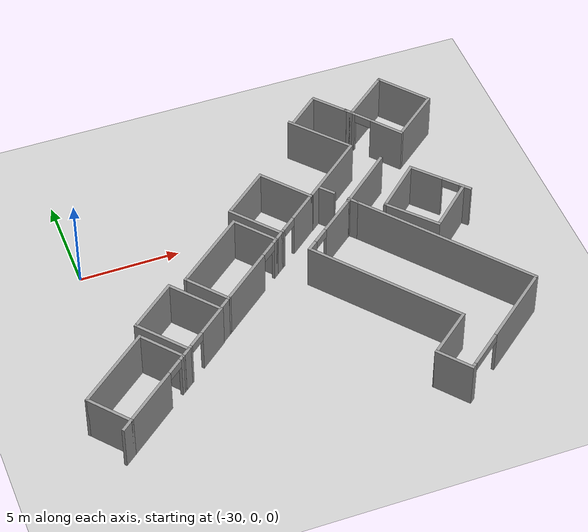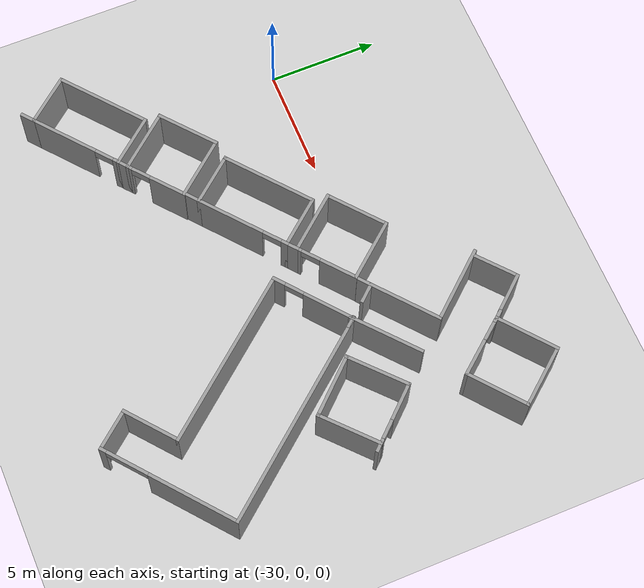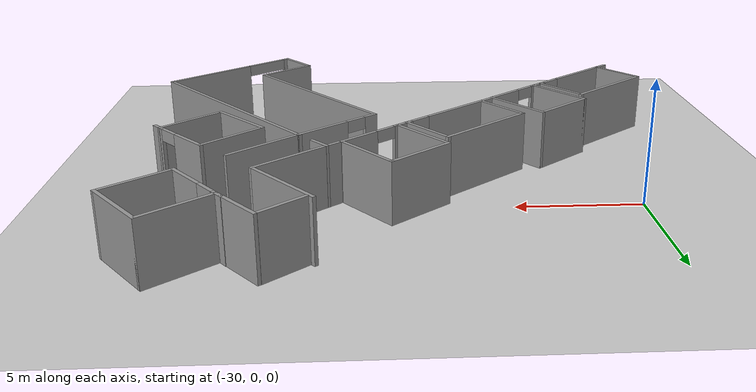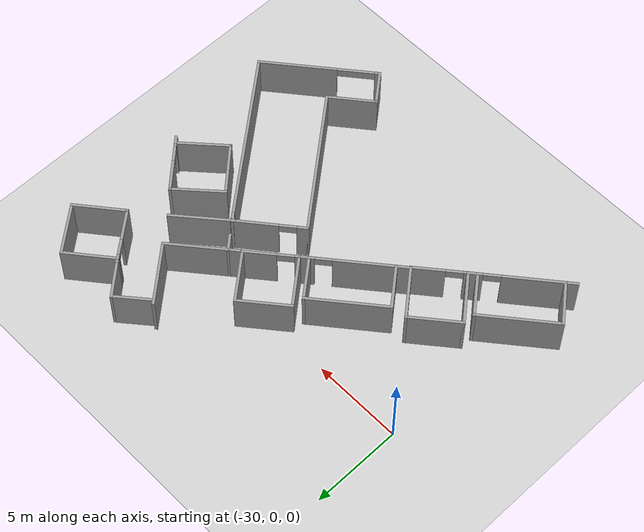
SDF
<sdf version="1.6">
 <world name="default">
  <model name="ground_plane">
   <static>1</static>
   <link name="link">
    <collision name="collision">
     <geometry><plane><normal>0 0 1</normal><size>100 100</size></plane></geometry>
     <surface>
      <contact><collide_bitmask>65535</collide_bitmask></contact>
      <friction><ode><mu>100</mu><mu2>50</mu2></ode></friction>
     </surface>
    </collision>
    <visual name="visual">
     <cast_shadows>0</cast_shadows>
     <geometry><plane><normal>0 0 1</normal><size>100 100</size></plane></geometry>
     <material>
      <script><uri>file://media/materials/scripts/gazebo.material</uri><name>Gazebo/Grey</name></script>
     </material>
    </visual>
   </link>
  </model>
  <model name="near_tuna_room_clone_clone">
   <pose>-12.5383 3.82224 0 0 0 -0.889073</pose>
   <link name="Wall_20">
    <collision name="Wall_20_Collision">
     <geometry><box><size>0.5 0.15 2.5</size></box></geometry>
     <pose>0 0 1.25 0 -0 0</pose>
    </collision>
    <visual name="Wall_20_Visual">
     <pose>0 0 1.25 0 -0 0</pose>
     <geometry><box><size>0.5 0.15 2.5</size></box></geometry>
     <material>
      <script><uri>file://media/materials/scripts/gazebo.material</uri><name>Gazebo/Grey</name></script>
      <ambient>1 1 1 1</ambient>
     </material>
     <meta><layer>0</layer></meta>
    </visual>
    <pose>-1.425 -1.425 0 0 -0 0</pose>
   </link>
   <link name="Wall_21">
    <collision name="Wall_21_Collision">
     <geometry><box><size>3 0.15 2.5</size></box></geometry>
     <pose>0 0 1.25 0 -0 0</pose>
    </collision>
    <visual name="Wall_21_Visual">
     <pose>0 0 1.25 0 -0 0</pose>
     <geometry><box><size>3 0.15 2.5</size></box></geometry>
     <material>
      <script><uri>file://media/materials/scripts/gazebo.material</uri><name>Gazebo/Grey</name></script>
      <ambient>1 1 1 1</ambient>
     </material>
     <meta><layer>0</layer></meta>
    </visual>
    <pose>-1.25 -0 0 0 -0 1.5708</pose>
   </link>
   <link name="Wall_22">
    <collision name="Wall_22_Collision">
     <geometry><box><size>3 0.15 2.5</size></box></geometry>
     <pose>0 0 1.25 0 -0 0</pose>
    </collision>
    <visual name="Wall_22_Visual">
     <pose>0 0 1.25 0 -0 0</pose>
     <geometry><box><size>3 0.15 2.5</size></box></geometry>
     <material>
      <script><uri>file://media/materials/scripts/gazebo.material</uri><name>Gazebo/Grey</name></script>
      <ambient>1 1 1 1</ambient>
     </material>
     <meta><layer>0</layer></meta>
    </visual>
    <pose>0.175 1.425 0 0 -0 0</pose>
   </link>
   <link name="Wall_23">
    <collision name="Wall_23_Collision">
     <geometry><box><size>3 0.15 2.5</size></box></geometry>
     <pose>0 0 1.25 0 -0 0</pose>
    </collision>
    <visual name="Wall_23_Visual">
     <pose>0 0 1.25 0 -0 0</pose>
     <geometry><box><size>3 0.15 2.5</size></box></geometry>
     <material>
      <script><uri>file://media/materials/scripts/gazebo.material</uri><name>Gazebo/Grey</name></script>
      <ambient>1 1 1 1</ambient>
     </material>
     <meta><layer>0</layer></meta>
    </visual>
    <pose>1.6 -0 0 0 -0 -1.5708</pose>
   </link>
   <link name="Wall_24">
    <pose>0.175 -1.425 0 0 -0 3.14159</pose>
    <visual name="Wall_24_Visual_0">
     <pose>-0.5975 0 1.25 0 -0 0</pose>
     <geometry><box><size>1.805 0.15 2.5</size></box></geometry>
     <material>
      <script><uri>file://media/materials/scripts/gazebo.material</uri><name>Gazebo/Grey</name></script>
      <ambient>1 1 1 1</ambient>
     </material>
     <meta><layer>0</layer></meta>
    </visual>
    <collision name="Wall_24_Collision_0">
     <geometry><box><size>1.805 0.15 2.5</size></box></geometry>
     <pose>-0.5975 0 1.25 0 -0 0</pose>
    </collision>
    <visual name="Wall_24_Visual_1">
     <pose>1.3525 0 1.25 0 -0 0</pose>
     <geometry><box><size>0.295 0.15 2.5</size></box></geometry>
     <material>
      <script><uri>file://media/materials/scripts/gazebo.material</uri><name>Gazebo/Grey</name></script>
      <ambient>1 1 1 1</ambient>
     </material>
     <meta><layer>0</layer></meta>
    </visual>
    <collision name="Wall_24_Collision_1">
     <geometry><box><size>0.295 0.15 2.5</size></box></geometry>
     <pose>1.3525 0 1.25 0 -0 0</pose>
    </collision>
    <visual name="Wall_24_Visual_2">
     <pose>0.755 0 2.25 0 -0 0</pose>
     <geometry><box><size>0.9 0.15 0.5</size></box></geometry>
     <material>
      <script><uri>file://media/materials/scripts/gazebo.material</uri><name>Gazebo/Grey</name></script>
      <ambient>1 1 1 1</ambient>
     </material>
     <meta><layer>0</layer></meta>
    </visual>
    <collision name="Wall_24_Collision_2">
     <geometry><box><size>0.9 0.15 0.5</size></box></geometry>
     <pose>0.755 0 2.25 0 -0 0</pose>
    </collision>
   </link>
   <static>1</static>
  </model>
  <model name="near_tuna_room_clone_clone_0">
   <pose>-13.1154 -2.886 0 0 -0 2.31173</pose>
   <link name="Wall_20">
    <collision name="Wall_20_Collision">
     <geometry><box><size>0.5 0.15 2.5</size></box></geometry>
     <pose>0 0 1.25 0 -0 0</pose>
    </collision>
    <visual name="Wall_20_Visual">
     <pose>0 0 1.25 0 -0 0</pose>
     <geometry><box><size>0.5 0.15 2.5</size></box></geometry>
     <material>
      <script><uri>file://media/materials/scripts/gazebo.material</uri><name>Gazebo/Grey</name></script>
      <ambient>1 1 1 1</ambient>
     </material>
     <meta><layer>0</layer></meta>
    </visual>
    <pose>-1.425 -1.425 0 0 -0 0</pose>
   </link>
   <link name="Wall_21">
    <collision name="Wall_21_Collision">
     <geometry><box><size>3 0.15 2.5</size></box></geometry>
     <pose>0 0 1.25 0 -0 0</pose>
    </collision>
    <visual name="Wall_21_Visual">
     <pose>0 0 1.25 0 -0 0</pose>
     <geometry><box><size>3 0.15 2.5</size></box></geometry>
     <material>
      <script><uri>file://media/materials/scripts/gazebo.material</uri><name>Gazebo/Grey</name></script>
      <ambient>1 1 1 1</ambient>
     </material>
     <meta><layer>0</layer></meta>
    </visual>
    <pose>-1.25 -0 0 0 -0 1.5708</pose>
   </link>
   <link name="Wall_22">
    <collision name="Wall_22_Collision">
     <geometry><box><size>3 0.15 2.5</size></box></geometry>
     <pose>0 0 1.25 0 -0 0</pose>
    </collision>
    <visual name="Wall_22_Visual">
     <pose>0 0 1.25 0 -0 0</pose>
     <geometry><box><size>3 0.15 2.5</size></box></geometry>
     <material>
      <script><uri>file://media/materials/scripts/gazebo.material</uri><name>Gazebo/Grey</name></script>
      <ambient>1 1 1 1</ambient>
     </material>
     <meta><layer>0</layer></meta>
    </visual>
    <pose>0.175 1.425 0 0 -0 0</pose>
   </link>
   <link name="Wall_23">
    <collision name="Wall_23_Collision">
     <geometry><box><size>3 0.15 2.5</size></box></geometry>
     <pose>0 0 1.25 0 -0 0</pose>
    </collision>
    <visual name="Wall_23_Visual">
     <pose>0 0 1.25 0 -0 0</pose>
     <geometry><box><size>3 0.15 2.5</size></box></geometry>
     <material>
      <script><uri>file://media/materials/scripts/gazebo.material</uri><name>Gazebo/Grey</name></script>
      <ambient>1 1 1 1</ambient>
     </material>
     <meta><layer>0</layer></meta>
    </visual>
    <pose>1.6 -0 0 0 -0 -1.5708</pose>
   </link>
   <link name="Wall_24">
    <pose>0.175 -1.425 0 0 -0 3.14159</pose>
    <visual name="Wall_24_Visual_0">
     <pose>-0.5975 0 1.25 0 -0 0</pose>
     <geometry><box><size>1.805 0.15 2.5</size></box></geometry>
     <material>
      <script><uri>file://media/materials/scripts/gazebo.material</uri><name>Gazebo/Grey</name></script>
      <ambient>1 1 1 1</ambient>
     </material>
     <meta><layer>0</layer></meta>
    </visual>
    <collision name="Wall_24_Collision_0">
     <geometry><box><size>1.805 0.15 2.5</size></box></geometry>
     <pose>-0.5975 0 1.25 0 -0 0</pose>
    </collision>
    <visual name="Wall_24_Visual_1">
     <pose>1.3525 0 1.25 0 -0 0</pose>
     <geometry><box><size>0.295 0.15 2.5</size></box></geometry>
     <material>
      <script><uri>file://media/materials/scripts/gazebo.material</uri><name>Gazebo/Grey</name></script>
      <ambient>1 1 1 1</ambient>
     </material>
     <meta><layer>0</layer></meta>
    </visual>
    <collision name="Wall_24_Collision_1">
     <geometry><box><size>0.295 0.15 2.5</size></box></geometry>
     <pose>1.3525 0 1.25 0 -0 0</pose>
    </collision>
    <visual name="Wall_24_Visual_2">
     <pose>0.755 0 2.25 0 -0 0</pose>
     <geometry><box><size>0.9 0.15 0.5</size></box></geometry>
     <material>
      <script><uri>file://media/materials/scripts/gazebo.material</uri><name>Gazebo/Grey</name></script>
      <ambient>1 1 1 1</ambient>
     </material>
     <meta><layer>0</layer></meta>
    </visual>
    <collision name="Wall_24_Collision_2">
     <geometry><box><size>0.9 0.15 0.5</size></box></geometry>
     <pose>0.755 0 2.25 0 -0 0</pose>
    </collision>
   </link>
   <static>1</static>
  </model>
  <model name="1814">
   <pose>-16.0654 -7.65729 0 0 -0 0.68239</pose>
   <link name="Wall_84">
    <collision name="Wall_84_Collision">
     <geometry><box><size>2 0.15 2.5</size></box></geometry>
     <pose>0 0 1.25 0 -0 0</pose>
    </collision>
    <visual name="Wall_84_Visual">
     <pose>0 0 1.25 0 -0 0</pose>
     <geometry><box><size>2 0.15 2.5</size></box></geometry>
     <material>
      <script><uri>file://media/materials/scripts/gazebo.material</uri><name>Gazebo/Grey</name></script>
      <ambient>1 1 1 1</ambient>
     </material>
     <meta><layer>0</layer></meta>
    </visual>
    <pose>-3.22488 -4.105 0 0 -0 1.57067</pose>
   </link>
   <link name="Wall_85">
    <collision name="Wall_85_Collision">
     <geometry><box><size>2.75 0.15 2.5</size></box></geometry>
     <pose>0 0 1.25 0 -0 0</pose>
    </collision>
    <visual name="Wall_85_Visual">
     <pose>0 0 1.25 0 -0 0</pose>
     <geometry><box><size>2.75 0.15 2.5</size></box></geometry>
     <material>
      <script><uri>file://media/materials/scripts/gazebo.material</uri><name>Gazebo/Grey</name></script>
      <ambient>1 1 1 1</ambient>
     </material>
     <meta><layer>0</layer></meta>
    </visual>
    <pose>-1.92476 -3.17998 0 0 -0 0</pose>
   </link>
   <link name="Wall_86">
    <collision name="Wall_86_Collision">
     <geometry><box><size>8.36 0.15 2.5</size></box></geometry>
     <pose>0 0 1.25 0 -0 0</pose>
    </collision>
    <visual name="Wall_86_Visual">
     <pose>0 0 1.25 0 -0 0</pose>
     <geometry><box><size>8.36 0.15 2.5</size></box></geometry>
     <material>
      <script><uri>file://media/materials/scripts/gazebo.material</uri><name>Gazebo/Grey</name></script>
      <ambient>1 1 1 1</ambient>
     </material>
     <meta><layer>0</layer></meta>
    </visual>
    <pose>-0.624761 0.925021 0 0 -0 1.5708</pose>
   </link>
   <link name="Wall_87">
    <pose>1.30012 5.03 0 0 -0 -1.1e-05</pose>
    <visual name="Wall_87_Visual_0">
     <pose>-1.68316 0 1.25 0 -0 0</pose>
     <geometry><box><size>0.633447 0.15 2.5</size></box></geometry>
     <material>
      <script><uri>file://media/materials/scripts/gazebo.material</uri><name>Gazebo/Grey</name></script>
      <ambient>1 1 1 1</ambient>
     </material>
     <meta><layer>0</layer></meta>
    </visual>
    <collision name="Wall_87_Collision_0">
     <geometry><box><size>0.633447 0.15 2.5</size></box></geometry>
     <pose>-1.68316 0 1.25 0 -0 0</pose>
    </collision>
    <visual name="Wall_87_Visual_1">
     <pose>0.766723 0 1.25 0 -0 0</pose>
     <geometry><box><size>2.46632 0.15 2.5</size></box></geometry>
     <material>
      <script><uri>file://media/materials/scripts/gazebo.material</uri><name>Gazebo/Grey</name></script>
      <ambient>1 1 1 1</ambient>
     </material>
     <meta><layer>0</layer></meta>
    </visual>
    <collision name="Wall_87_Collision_1">
     <geometry><box><size>2.46632 0.15 2.5</size></box></geometry>
     <pose>0.766723 0 1.25 0 -0 0</pose>
    </collision>
    <visual name="Wall_87_Visual_2">
     <pose>-0.916436 0 2.25 0 -0 0</pose>
     <geometry><box><size>0.9 0.15 0.5</size></box></geometry>
     <material>
      <script><uri>file://media/materials/scripts/gazebo.material</uri><name>Gazebo/Grey</name></script>
      <ambient>1 1 1 1</ambient>
     </material>
     <meta><layer>0</layer></meta>
    </visual>
    <collision name="Wall_87_Collision_2">
     <geometry><box><size>0.9 0.15 0.5</size></box></geometry>
     <pose>-0.916436 0 2.25 0 -0 0</pose>
    </collision>
   </link>
   <link name="Wall_88">
    <collision name="Wall_88_Collision">
     <geometry><box><size>10.21 0.15 2.5</size></box></geometry>
     <pose>0 0 1.25 0 -0 0</pose>
    </collision>
    <visual name="Wall_88_Visual">
     <pose>0 0 1.25 0 -0 0</pose>
     <geometry><box><size>10.21 0.15 2.5</size></box></geometry>
     <material>
      <script><uri>file://media/materials/scripts/gazebo.material</uri><name>Gazebo/Grey</name></script>
      <ambient>1 1 1 1</ambient>
     </material>
     <meta><layer>0</layer></meta>
    </visual>
    <pose>3.225 -2.1e-05 0 0 -0 -1.5708</pose>
   </link>
   <link name="Wall_89">
    <pose>4e-06 -5.03002 0 0 -0 3.14159</pose>
    <visual name="Wall_89_Visual_0">
     <pose>-1.17013 0 1.25 0 -0 0</pose>
     <geometry><box><size>4.25951 0.15 2.5</size></box></geometry>
     <material>
      <script><uri>file://media/materials/scripts/gazebo.material</uri><name>Gazebo/Grey</name></script>
      <ambient>1 1 1 1</ambient>
     </material>
     <meta><layer>0</layer></meta>
    </visual>
    <collision name="Wall_89_Collision_0">
     <geometry><box><size>4.25951 0.15 2.5</size></box></geometry>
     <pose>-1.17013 0 1.25 0 -0 0</pose>
    </collision>
    <visual name="Wall_89_Visual_1">
     <pose>3.12976 0 1.25 0 -0 0</pose>
     <geometry><box><size>0.340254 0.15 2.5</size></box></geometry>
     <material>
      <script><uri>file://media/materials/scripts/gazebo.material</uri><name>Gazebo/Grey</name></script>
      <ambient>1 1 1 1</ambient>
     </material>
     <meta><layer>0</layer></meta>
    </visual>
    <collision name="Wall_89_Collision_1">
     <geometry><box><size>0.340254 0.15 2.5</size></box></geometry>
     <pose>3.12976 0 1.25 0 -0 0</pose>
    </collision>
    <visual name="Wall_89_Visual_2">
     <pose>1.95963 0 2.25 0 -0 0</pose>
     <geometry><box><size>2 0.15 0.5</size></box></geometry>
     <material>
      <script><uri>file://media/materials/scripts/gazebo.material</uri><name>Gazebo/Grey</name></script>
      <ambient>1 1 1 1</ambient>
     </material>
     <meta><layer>0</layer></meta>
    </visual>
    <collision name="Wall_89_Collision_2">
     <geometry><box><size>2 0.15 0.5</size></box></geometry>
     <pose>1.95963 0 2.25 0 -0 0</pose>
    </collision>
   </link>
   <static>1</static>
  </model>
  <model name="wall(3.5)_0">
   <link name="Wall_106">
    <pose>1.09405 -0.024737 0 0 -0 0</pose>
    <inertial>
     <mass>1</mass>
     <inertia><ixx>1</ixx><ixy>0</ixy><ixz>0</ixz><iyy>1</iyy><iyz>0</iyz><izz>1</izz></inertia>
    </inertial>
    <visual name="Wall_106_Visual">
     <pose>0 0 1.25 0 -0 0</pose>
     <geometry><box><size>3.5 0.15 2.5</size></box></geometry>
     <material>
      <script><uri>file://media/materials/scripts/gazebo.material</uri><name>Gazebo/Grey</name></script>
      <ambient>1 1 1 1</ambient>
      <shader type="vertex"><normal_map>__default__</normal_map></shader>
      <diffuse>0.7 0.7 0.7 1</diffuse>
      <specular>0.01 0.01 0.01 1</specular>
      <emissive>0 0 0 1</emissive>
     </material>
     <meta><layer>0</layer></meta>
    </visual>
    <collision name="Wall_106_Collision">
     <pose>0 0 1.25 0 -0 0</pose>
     <geometry><box><size>6.75 0.15 2.5</size></box></geometry>
     <surface>
      <friction>
       <ode><mu>1</mu><mu2>1</mu2><fdir1>0 0 0</fdir1><slip1>0</slip1><slip2>0</slip2></ode>
       <torsional>
        <coefficient>1</coefficient>
        <patch_radius>0</patch_radius>
        <surface_radius>0</surface_radius>
        <use_patch_radius>1</use_patch_radius>
        <ode><slip>0</slip></ode>
       </torsional>
      </friction>
      <bounce><restitution_coefficient>0</restitution_coefficient><threshold>1e+06</threshold></bounce>
      <contact>
       <collide_without_contact>0</collide_without_contact>
       <collide_without_contact_bitmask>1</collide_without_contact_bitmask>
       <collide_bitmask>1</collide_bitmask>
       <ode>
        <soft_cfm>0</soft_cfm>
        <soft_erp>0.2</soft_erp>
        <kp>1e+13</kp>
        <kd>1</kd>
        <max_vel>0.01</max_vel>
        <min_depth>0</min_depth>
       </ode>
       <bullet>
        <split_impulse>1</split_impulse>
        <split_impulse_penetration_threshold>-0.01</split_impulse_penetration_threshold>
        <soft_cfm>0</soft_cfm>
        <soft_erp>0.2</soft_erp>
        <kp>1e+13</kp>
        <kd>1</kd>
       </bullet>
      </contact>
     </surface>
    </collision>
   </link>
   <static>1</static>
   <pose>-16.3998 -1.40649 0 0 -0 0.70597</pose>
  </model>
  <model name="wall(3.5)_0_clone">
   <link name="Wall_106">
    <pose>1.09405 -0.024737 0 0 -0 0</pose>
    <inertial>
     <mass>1</mass>
     <inertia><ixx>1</ixx><ixy>0</ixy><ixz>0</ixz><iyy>1</iyy><iyz>0</iyz><izz>1</izz></inertia>
    </inertial>
    <visual name="Wall_106_Visual">
     <pose>0 0 1.25 0 -0 0</pose>
     <geometry><box><size>3.5 0.15 2.5</size></box></geometry>
     <material>
      <script><uri>file://media/materials/scripts/gazebo.material</uri><name>Gazebo/Grey</name></script>
      <ambient>1 1 1 1</ambient>
      <shader type="vertex"><normal_map>__default__</normal_map></shader>
      <diffuse>0.7 0.7 0.7 1</diffuse>
      <specular>0.01 0.01 0.01 1</specular>
      <emissive>0 0 0 1</emissive>
     </material>
     <meta><layer>0</layer></meta>
    </visual>
    <collision name="Wall_106_Collision">
     <pose>0 0 1.25 0 -0 0</pose>
     <geometry><box><size>6.75 0.15 2.5</size></box></geometry>
     <surface>
      <friction>
       <ode><mu>1</mu><mu2>1</mu2><fdir1>0 0 0</fdir1><slip1>0</slip1><slip2>0</slip2></ode>
       <torsional>
        <coefficient>1</coefficient>
        <patch_radius>0</patch_radius>
        <surface_radius>0</surface_radius>
        <use_patch_radius>1</use_patch_radius>
        <ode><slip>0</slip></ode>
       </torsional>
      </friction>
      <bounce><restitution_coefficient>0</restitution_coefficient><threshold>1e+06</threshold></bounce>
      <contact>
       <collide_without_contact>0</collide_without_contact>
       <collide_without_contact_bitmask>1</collide_without_contact_bitmask>
       <collide_bitmask>1</collide_bitmask>
       <ode>
        <soft_cfm>0</soft_cfm>
        <soft_erp>0.2</soft_erp>
        <kp>1e+13</kp>
        <kd>1</kd>
        <max_vel>0.01</max_vel>
        <min_depth>0</min_depth>
       </ode>
       <bullet>
        <split_impulse>1</split_impulse>
        <split_impulse_penetration_threshold>-0.01</split_impulse_penetration_threshold>
        <soft_cfm>0</soft_cfm>
        <soft_erp>0.2</soft_erp>
        <kp>1e+13</kp>
        <kd>1</kd>
       </bullet>
      </contact>
     </surface>
    </collision>
   </link>
   <static>1</static>
   <pose>-17.2031 3.90362 0 0 0 -0.863375</pose>
  </model>
  <model name="wall(2)_clone_0">
   <link name="Wall_106">
    <pose>0.407329 -0.052672 0 0 -0 0</pose>
    <inertial>
     <mass>1</mass>
     <inertia><ixx>1</ixx><ixy>0</ixy><ixz>0</ixz><iyy>1</iyy><iyz>0</iyz><izz>1</izz></inertia>
    </inertial>
    <visual name="Wall_106_Visual">
     <pose>0 0 1.25 0 -0 0</pose>
     <geometry><box><size>2 0.15 2.5</size></box></geometry>
     <material>
      <script><uri>file://media/materials/scripts/gazebo.material</uri><name>Gazebo/Grey</name></script>
      <ambient>1 1 1 1</ambient>
      <shader type="vertex"><normal_map>__default__</normal_map></shader>
      <diffuse>0.7 0.7 0.7 1</diffuse>
      <specular>0.01 0.01 0.01 1</specular>
      <emissive>0 0 0 1</emissive>
     </material>
     <meta><layer>0</layer></meta>
    </visual>
    <collision name="Wall_106_Collision">
     <pose>0 0 1.25 0 -0 0</pose>
     <geometry><box><size>6.75 0.15 2.5</size></box></geometry>
     <surface>
      <friction>
       <ode><mu>1</mu><mu2>1</mu2><fdir1>0 0 0</fdir1><slip1>0</slip1><slip2>0</slip2></ode>
       <torsional>
        <coefficient>1</coefficient>
        <patch_radius>0</patch_radius>
        <surface_radius>0</surface_radius>
        <use_patch_radius>1</use_patch_radius>
        <ode><slip>0</slip></ode>
       </torsional>
      </friction>
      <bounce><restitution_coefficient>0</restitution_coefficient><threshold>1e+06</threshold></bounce>
      <contact>
       <collide_without_contact>0</collide_without_contact>
       <collide_without_contact_bitmask>1</collide_without_contact_bitmask>
       <collide_bitmask>1</collide_bitmask>
       <ode>
        <soft_cfm>0</soft_cfm>
        <soft_erp>0.2</soft_erp>
        <kp>1e+13</kp>
        <kd>1</kd>
        <max_vel>0.01</max_vel>
        <min_depth>0</min_depth>
       </ode>
       <bullet>
        <split_impulse>1</split_impulse>
        <split_impulse_penetration_threshold>-0.01</split_impulse_penetration_threshold>
        <soft_cfm>0</soft_cfm>
        <soft_erp>0.2</soft_erp>
        <kp>1e+13</kp>
        <kd>1</kd>
       </bullet>
      </contact>
     </surface>
    </collision>
   </link>
   <static>1</static>
   <pose>-17.0183 4.64119 0 0 -0 0.703999</pose>
  </model>
  <model name="wall(2)_clone_0_clone">
   <link name="Wall_106">
    <pose>0.407329 -0.052672 0 0 -0 0</pose>
    <inertial>
     <mass>1</mass>
     <inertia><ixx>1</ixx><ixy>0</ixy><ixz>0</ixz><iyy>1</iyy><iyz>0</iyz><izz>1</izz></inertia>
    </inertial>
    <visual name="Wall_106_Visual">
     <pose>0 0 1.25 0 -0 0</pose>
     <geometry><box><size>2 0.15 2.5</size></box></geometry>
     <material>
      <script><uri>file://media/materials/scripts/gazebo.material</uri><name>Gazebo/Grey</name></script>
      <ambient>1 1 1 1</ambient>
      <shader type="vertex"><normal_map>__default__</normal_map></shader>
      <diffuse>0.7 0.7 0.7 1</diffuse>
      <specular>0.01 0.01 0.01 1</specular>
      <emissive>0 0 0 1</emissive>
     </material>
     <meta><layer>0</layer></meta>
    </visual>
    <collision name="Wall_106_Collision">
     <pose>0 0 1.25 0 -0 0</pose>
     <geometry><box><size>6.75 0.15 2.5</size></box></geometry>
     <surface>
      <friction>
       <ode><mu>1</mu><mu2>1</mu2><fdir1>0 0 0</fdir1><slip1>0</slip1><slip2>0</slip2></ode>
       <torsional>
        <coefficient>1</coefficient>
        <patch_radius>0</patch_radius>
        <surface_radius>0</surface_radius>
        <use_patch_radius>1</use_patch_radius>
        <ode><slip>0</slip></ode>
       </torsional>
      </friction>
      <bounce><restitution_coefficient>0</restitution_coefficient><threshold>1e+06</threshold></bounce>
      <contact>
       <collide_without_contact>0</collide_without_contact>
       <collide_without_contact_bitmask>1</collide_without_contact_bitmask>
       <collide_bitmask>1</collide_bitmask>
       <ode>
        <soft_cfm>0</soft_cfm>
        <soft_erp>0.2</soft_erp>
        <kp>1e+13</kp>
        <kd>1</kd>
        <max_vel>0.01</max_vel>
        <min_depth>0</min_depth>
       </ode>
       <bullet>
        <split_impulse>1</split_impulse>
        <split_impulse_penetration_threshold>-0.01</split_impulse_penetration_threshold>
        <soft_cfm>0</soft_cfm>
        <soft_erp>0.2</soft_erp>
        <kp>1e+13</kp>
        <kd>1</kd>
       </bullet>
      </contact>
     </surface>
    </collision>
   </link>
   <static>1</static>
   <pose>-15.4826 5.18413 0 0 0 -0.858533</pose>
  </model>
  <model name="wall(1)">
   <link name="Wall_0">
    <pose>0.220729 0 0 0 -0 0</pose>
    <inertial>
     <mass>1</mass>
     <inertia><ixx>1</ixx><ixy>0</ixy><ixz>0</ixz><iyy>1</iyy><iyz>0</iyz><izz>1</izz></inertia>
    </inertial>
    <visual name="Wall_0_Visual">
     <pose>0 0 1.25 0 -0 0</pose>
     <geometry><box><size>1 0.15 2.5</size></box></geometry>
     <material>
      <script><uri>file://media/materials/scripts/gazebo.material</uri><name>Gazebo/Grey</name></script>
      <ambient>1 1 1 1</ambient>
      <shader type="vertex"><normal_map>__default__</normal_map></shader>
      <diffuse>0.7 0.7 0.7 1</diffuse>
      <specular>0.01 0.01 0.01 1</specular>
      <emissive>0 0 0 1</emissive>
     </material>
     <meta><layer>0</layer></meta>
    </visual>
    <collision name="Wall_0_Collision">
     <pose>0 0 1.25 0 -0 0</pose>
     <geometry><box><size>2.25 0.15 2.5</size></box></geometry>
     <surface>
      <friction>
       <ode><mu>1</mu><mu2>1</mu2><fdir1>0 0 0</fdir1><slip1>0</slip1><slip2>0</slip2></ode>
       <torsional>
        <coefficient>1</coefficient>
        <patch_radius>0</patch_radius>
        <surface_radius>0</surface_radius>
        <use_patch_radius>1</use_patch_radius>
        <ode><slip>0</slip></ode>
       </torsional>
      </friction>
      <bounce><restitution_coefficient>0</restitution_coefficient><threshold>1e+06</threshold></bounce>
      <contact>
       <collide_without_contact>0</collide_without_contact>
       <collide_without_contact_bitmask>1</collide_without_contact_bitmask>
       <collide_bitmask>1</collide_bitmask>
       <ode>
        <soft_cfm>0</soft_cfm>
        <soft_erp>0.2</soft_erp>
        <kp>1e+13</kp>
        <kd>1</kd>
        <max_vel>0.01</max_vel>
        <min_depth>0</min_depth>
       </ode>
       <bullet>
        <split_impulse>1</split_impulse>
        <split_impulse_penetration_threshold>-0.01</split_impulse_penetration_threshold>
        <soft_cfm>0</soft_cfm>
        <soft_erp>0.2</soft_erp>
        <kp>1e+13</kp>
        <kd>1</kd>
       </bullet>
      </contact>
     </surface>
    </collision>
   </link>
   <static>1</static>
   <pose>-17.7379 -0.57016 0 0 0 -0.853744</pose>
  </model>
  <model name="wall(0.6)_1">
   <link name="Wall_0">
    <inertial>
     <mass>1</mass>
     <inertia><ixx>1</ixx><ixy>0</ixy><ixz>0</ixz><iyy>1</iyy><iyz>0</iyz><izz>1</izz></inertia>
    </inertial>
    <visual name="Wall_0_Visual">
     <pose>0 0 1.25 0 -0 0</pose>
     <geometry><box><size>0.6 0.15 2.5</size></box></geometry>
     <material>
      <script><uri>file://media/materials/scripts/gazebo.material</uri><name>Gazebo/Grey</name></script>
      <ambient>1 1 1 1</ambient>
      <shader type="vertex"><normal_map>__default__</normal_map></shader>
      <diffuse>0.7 0.7 0.7 1</diffuse>
      <specular>0.01 0.01 0.01 1</specular>
      <emissive>0 0 0 1</emissive>
     </material>
     <meta><layer>0</layer></meta>
    </visual>
    <collision name="Wall_0_Collision">
     <pose>0 0 1.25 0 -0 0</pose>
     <geometry><box><size>2.25 0.15 2.5</size></box></geometry>
     <surface>
      <friction>
       <ode><mu>1</mu><mu2>1</mu2><fdir1>0 0 0</fdir1><slip1>0</slip1><slip2>0</slip2></ode>
       <torsional>
        <coefficient>1</coefficient>
        <patch_radius>0</patch_radius>
        <surface_radius>0</surface_radius>
        <use_patch_radius>1</use_patch_radius>
        <ode><slip>0</slip></ode>
       </torsional>
      </friction>
      <bounce><restitution_coefficient>0</restitution_coefficient><threshold>1e+06</threshold></bounce>
      <contact>
       <collide_without_contact>0</collide_without_contact>
       <collide_without_contact_bitmask>1</collide_without_contact_bitmask>
       <collide_bitmask>1</collide_bitmask>
       <ode>
        <soft_cfm>0</soft_cfm>
        <soft_erp>0.2</soft_erp>
        <kp>1e+13</kp>
        <kd>1</kd>
        <max_vel>0.01</max_vel>
        <min_depth>0</min_depth>
       </ode>
       <bullet>
        <split_impulse>1</split_impulse>
        <split_impulse_penetration_threshold>-0.01</split_impulse_penetration_threshold>
        <soft_cfm>0</soft_cfm>
        <soft_erp>0.2</soft_erp>
        <kp>1e+13</kp>
        <kd>1</kd>
       </bullet>
      </contact>
     </surface>
    </collision>
   </link>
   <static>1</static>
   <pose>-16.6242 -1.87663 0 0 0 -0.848965</pose>
  </model>
  <model name="wall(4)">
   <link name="Wall_106">
    <pose>1.45379 0 0 0 -0 0</pose>
    <inertial>
     <mass>1</mass>
     <inertia><ixx>1</ixx><ixy>0</ixy><ixz>0</ixz><iyy>1</iyy><iyz>0</iyz><izz>1</izz></inertia>
    </inertial>
    <visual name="Wall_106_Visual">
     <pose>0 0 1.25 0 -0 0</pose>
     <geometry><box><size>4 0.15 2.5</size></box></geometry>
     <material>
      <script><uri>file://media/materials/scripts/gazebo.material</uri><name>Gazebo/Grey</name></script>
      <ambient>1 1 1 1</ambient>
      <shader type="vertex"><normal_map>__default__</normal_map></shader>
      <diffuse>0.7 0.7 0.7 1</diffuse>
      <specular>0.01 0.01 0.01 1</specular>
      <emissive>0 0 0 1</emissive>
     </material>
     <meta><layer>0</layer></meta>
    </visual>
    <collision name="Wall_106_Collision">
     <pose>0 0 1.25 0 -0 0</pose>
     <geometry><box><size>6.75 0.15 2.5</size></box></geometry>
     <surface>
      <friction>
       <ode><mu>1</mu><mu2>1</mu2><fdir1>0 0 0</fdir1><slip1>0</slip1><slip2>0</slip2></ode>
       <torsional>
        <coefficient>1</coefficient>
        <patch_radius>0</patch_radius>
        <surface_radius>0</surface_radius>
        <use_patch_radius>1</use_patch_radius>
        <ode><slip>0</slip></ode>
       </torsional>
      </friction>
      <bounce><restitution_coefficient>0</restitution_coefficient><threshold>1e+06</threshold></bounce>
      <contact>
       <collide_without_contact>0</collide_without_contact>
       <collide_without_contact_bitmask>1</collide_without_contact_bitmask>
       <collide_bitmask>1</collide_bitmask>
       <ode>
        <soft_cfm>0</soft_cfm>
        <soft_erp>0.2</soft_erp>
        <kp>1e+13</kp>
        <kd>1</kd>
        <max_vel>0.01</max_vel>
        <min_depth>0</min_depth>
       </ode>
       <bullet>
        <split_impulse>1</split_impulse>
        <split_impulse_penetration_threshold>-0.01</split_impulse_penetration_threshold>
        <soft_cfm>0</soft_cfm>
        <soft_erp>0.2</soft_erp>
        <kp>1e+13</kp>
        <kd>1</kd>
       </bullet>
      </contact>
     </surface>
    </collision>
   </link>
   <static>1</static>
   <pose>-17.9401 -0.473968 0 0 -0 0.692371</pose>
  </model>
  <model name="near_tuna_room_clone_clone_0_clone">
   <pose>-20.5767 -0.788991 -0 0 -0 0.69119</pose>
   <link name="Wall_20">
    <collision name="Wall_20_Collision">
     <geometry><box><size>0.5 0.15 2.5</size></box></geometry>
     <pose>0 0 1.25 0 -0 0</pose>
    </collision>
    <visual name="Wall_20_Visual">
     <pose>0 0 1.25 0 -0 0</pose>
     <geometry><box><size>0.5 0.15 2.5</size></box></geometry>
     <material>
      <script><uri>file://media/materials/scripts/gazebo.material</uri><name>Gazebo/Grey</name></script>
      <ambient>1 1 1 1</ambient>
     </material>
     <meta><layer>0</layer></meta>
    </visual>
    <pose>-1.425 -1.425 0 0 -0 0</pose>
   </link>
   <link name="Wall_21">
    <collision name="Wall_21_Collision">
     <geometry><box><size>3 0.15 2.5</size></box></geometry>
     <pose>0 0 1.25 0 -0 0</pose>
    </collision>
    <visual name="Wall_21_Visual">
     <pose>0 0 1.25 0 -0 0</pose>
     <geometry><box><size>3 0.15 2.5</size></box></geometry>
     <material>
      <script><uri>file://media/materials/scripts/gazebo.material</uri><name>Gazebo/Grey</name></script>
      <ambient>1 1 1 1</ambient>
     </material>
     <meta><layer>0</layer></meta>
    </visual>
    <pose>-1.25 -0 0 0 -0 1.5708</pose>
   </link>
   <link name="Wall_22">
    <collision name="Wall_22_Collision">
     <geometry><box><size>3 0.15 2.5</size></box></geometry>
     <pose>0 0 1.25 0 -0 0</pose>
    </collision>
    <visual name="Wall_22_Visual">
     <pose>0 0 1.25 0 -0 0</pose>
     <geometry><box><size>3 0.15 2.5</size></box></geometry>
     <material>
      <script><uri>file://media/materials/scripts/gazebo.material</uri><name>Gazebo/Grey</name></script>
      <ambient>1 1 1 1</ambient>
     </material>
     <meta><layer>0</layer></meta>
    </visual>
    <pose>0.175 1.425 0 0 -0 0</pose>
   </link>
   <link name="Wall_23">
    <collision name="Wall_23_Collision">
     <geometry><box><size>3 0.15 2.5</size></box></geometry>
     <pose>0 0 1.25 0 -0 0</pose>
    </collision>
    <visual name="Wall_23_Visual">
     <pose>0 0 1.25 0 -0 0</pose>
     <geometry><box><size>3 0.15 2.5</size></box></geometry>
     <material>
      <script><uri>file://media/materials/scripts/gazebo.material</uri><name>Gazebo/Grey</name></script>
      <ambient>1 1 1 1</ambient>
     </material>
     <meta><layer>0</layer></meta>
    </visual>
    <pose>1.6 -0 0 0 -0 -1.5708</pose>
   </link>
   <link name="Wall_24">
    <pose>0.175 -1.425 0 0 -0 3.14159</pose>
    <visual name="Wall_24_Visual_0">
     <pose>-0.5975 0 1.25 0 -0 0</pose>
     <geometry><box><size>1.805 0.15 2.5</size></box></geometry>
     <material>
      <script><uri>file://media/materials/scripts/gazebo.material</uri><name>Gazebo/Grey</name></script>
      <ambient>1 1 1 1</ambient>
     </material>
     <meta><layer>0</layer></meta>
    </visual>
    <collision name="Wall_24_Collision_0">
     <geometry><box><size>1.805 0.15 2.5</size></box></geometry>
     <pose>-0.5975 0 1.25 0 -0 0</pose>
    </collision>
    <visual name="Wall_24_Visual_1">
     <pose>1.3525 0 1.25 0 -0 0</pose>
     <geometry><box><size>0.295 0.15 2.5</size></box></geometry>
     <material>
      <script><uri>file://media/materials/scripts/gazebo.material</uri><name>Gazebo/Grey</name></script>
      <ambient>1 1 1 1</ambient>
     </material>
     <meta><layer>0</layer></meta>
    </visual>
    <collision name="Wall_24_Collision_1">
     <geometry><box><size>0.295 0.15 2.5</size></box></geometry>
     <pose>1.3525 0 1.25 0 -0 0</pose>
    </collision>
    <visual name="Wall_24_Visual_2">
     <pose>0.755 0 2.25 0 -0 0</pose>
     <geometry><box><size>0.9 0.15 0.5</size></box></geometry>
     <material>
      <script><uri>file://media/materials/scripts/gazebo.material</uri><name>Gazebo/Grey</name></script>
      <ambient>1 1 1 1</ambient>
     </material>
     <meta><layer>0</layer></meta>
    </visual>
    <collision name="Wall_24_Collision_2">
     <geometry><box><size>0.9 0.15 0.5</size></box></geometry>
     <pose>0.755 0 2.25 0 -0 0</pose>
    </collision>
   </link>
   <static>1</static>
  </model>
  <model name="Left_door_room_0">
   <pose>-23.6728 -3.66405 0 0 0 -2.45407</pose>
   <link name="Wall_29">
    <pose>-0.3 1.175 0 0 -0 0</pose>
    <visual name="Wall_29_Visual_0">
     <pose>-2.0775 0 1.25 0 -0 0</pose>
     <geometry><box><size>0.345 0.15 2.5</size></box></geometry>
     <material>
      <script><uri>file://media/materials/scripts/gazebo.material</uri><name>Gazebo/Grey</name></script>
      <ambient>1 1 1 1</ambient>
     </material>
     <meta><layer>0</layer></meta>
    </visual>
    <collision name="Wall_29_Collision_0">
     <geometry><box><size>0.345 0.15 2.5</size></box></geometry>
     <pose>-2.0775 0 1.25 0 -0 0</pose>
    </collision>
    <visual name="Wall_29_Visual_1">
     <pose>0.6225 0 1.25 0 -0 0</pose>
     <geometry><box><size>3.255 0.15 2.5</size></box></geometry>
     <material>
      <script><uri>file://media/materials/scripts/gazebo.material</uri><name>Gazebo/Grey</name></script>
      <ambient>1 1 1 1</ambient>
     </material>
     <meta><layer>0</layer></meta>
    </visual>
    <collision name="Wall_29_Collision_1">
     <geometry><box><size>3.255 0.15 2.5</size></box></geometry>
     <pose>0.6225 0 1.25 0 -0 0</pose>
    </collision>
    <visual name="Wall_29_Visual_2">
     <pose>-1.455 0 2.25 0 -0 0</pose>
     <geometry><box><size>0.9 0.15 0.5</size></box></geometry>
     <material>
      <script><uri>file://media/materials/scripts/gazebo.material</uri><name>Gazebo/Grey</name></script>
      <ambient>1 1 1 1</ambient>
     </material>
     <meta><layer>0</layer></meta>
    </visual>
    <collision name="Wall_29_Collision_2">
     <geometry><box><size>0.9 0.15 0.5</size></box></geometry>
     <pose>-1.455 0 2.25 0 -0 0</pose>
    </collision>
   </link>
   <link name="Wall_30">
    <collision name="Wall_30_Collision">
     <geometry><box><size>2.5 0.15 2.5</size></box></geometry>
     <pose>0 0 1.25 0 -0 0</pose>
    </collision>
    <visual name="Wall_30_Visual">
     <pose>0 0 1.25 0 -0 0</pose>
     <geometry><box><size>2.5 0.15 2.5</size></box></geometry>
     <material>
      <script><uri>file://media/materials/scripts/gazebo.material</uri><name>Gazebo/Grey</name></script>
      <ambient>1 1 1 1</ambient>
     </material>
     <meta><layer>0</layer></meta>
    </visual>
    <pose>1.875 0 0 0 -0 -1.5708</pose>
   </link>
   <link name="Wall_31">
    <collision name="Wall_31_Collision">
     <geometry><box><size>4.5 0.15 2.5</size></box></geometry>
     <pose>0 0 1.25 0 -0 0</pose>
    </collision>
    <visual name="Wall_31_Visual">
     <pose>0 0 1.25 0 -0 0</pose>
     <geometry><box><size>4.5 0.15 2.5</size></box></geometry>
     <material>
      <script><uri>file://media/materials/scripts/gazebo.material</uri><name>Gazebo/Grey</name></script>
      <ambient>1 1 1 1</ambient>
     </material>
     <meta><layer>0</layer></meta>
    </visual>
    <pose>-0.3 -1.175 0 0 -0 3.14159</pose>
   </link>
   <link name="Wall_32">
    <collision name="Wall_32_Collision">
     <geometry><box><size>2.5 0.15 2.5</size></box></geometry>
     <pose>0 0 1.25 0 -0 0</pose>
    </collision>
    <visual name="Wall_32_Visual">
     <pose>0 0 1.25 0 -0 0</pose>
     <geometry><box><size>2.5 0.15 2.5</size></box></geometry>
     <material>
      <script><uri>file://media/materials/scripts/gazebo.material</uri><name>Gazebo/Grey</name></script>
      <ambient>1 1 1 1</ambient>
     </material>
     <meta><layer>0</layer></meta>
    </visual>
    <pose>-2.475 0 0 0 -0 1.5708</pose>
   </link>
   <link name="Wall_34">
    <collision name="Wall_34_Collision">
     <geometry><box><size>0.75 0.15 2.5</size></box></geometry>
     <pose>0 0 1.25 0 -0 0</pose>
    </collision>
    <visual name="Wall_34_Visual">
     <pose>0 0 1.25 0 -0 0</pose>
     <geometry><box><size>0.75 0.15 2.5</size></box></geometry>
     <material>
      <script><uri>file://media/materials/scripts/gazebo.material</uri><name>Gazebo/Grey</name></script>
      <ambient>1 1 1 1</ambient>
     </material>
     <meta><layer>0</layer></meta>
    </visual>
    <pose>2.175 1.175 0 0 -0 0</pose>
   </link>
   <static>1</static>
  </model>
  <model name="near_tuna_room_clone_clone_0_clone_clone">
   <pose>-27.0636 -6.16799 0 0 -0 0.69119</pose>
   <link name="Wall_20">
    <collision name="Wall_20_Collision">
     <geometry><box><size>0.5 0.15 2.5</size></box></geometry>
     <pose>0 0 1.25 0 -0 0</pose>
    </collision>
    <visual name="Wall_20_Visual">
     <pose>0 0 1.25 0 -0 0</pose>
     <geometry><box><size>0.5 0.15 2.5</size></box></geometry>
     <material>
      <script><uri>file://media/materials/scripts/gazebo.material</uri><name>Gazebo/Grey</name></script>
      <ambient>1 1 1 1</ambient>
     </material>
     <meta><layer>0</layer></meta>
    </visual>
    <pose>-1.425 -1.425 0 0 -0 0</pose>
   </link>
   <link name="Wall_21">
    <collision name="Wall_21_Collision">
     <geometry><box><size>3 0.15 2.5</size></box></geometry>
     <pose>0 0 1.25 0 -0 0</pose>
    </collision>
    <visual name="Wall_21_Visual">
     <pose>0 0 1.25 0 -0 0</pose>
     <geometry><box><size>3 0.15 2.5</size></box></geometry>
     <material>
      <script><uri>file://media/materials/scripts/gazebo.material</uri><name>Gazebo/Grey</name></script>
      <ambient>1 1 1 1</ambient>
     </material>
     <meta><layer>0</layer></meta>
    </visual>
    <pose>-1.25 -0 0 0 -0 1.5708</pose>
   </link>
   <link name="Wall_22">
    <collision name="Wall_22_Collision">
     <geometry><box><size>3 0.15 2.5</size></box></geometry>
     <pose>0 0 1.25 0 -0 0</pose>
    </collision>
    <visual name="Wall_22_Visual">
     <pose>0 0 1.25 0 -0 0</pose>
     <geometry><box><size>3 0.15 2.5</size></box></geometry>
     <material>
      <script><uri>file://media/materials/scripts/gazebo.material</uri><name>Gazebo/Grey</name></script>
      <ambient>1 1 1 1</ambient>
     </material>
     <meta><layer>0</layer></meta>
    </visual>
    <pose>0.175 1.425 0 0 -0 0</pose>
   </link>
   <link name="Wall_23">
    <collision name="Wall_23_Collision">
     <geometry><box><size>3 0.15 2.5</size></box></geometry>
     <pose>0 0 1.25 0 -0 0</pose>
    </collision>
    <visual name="Wall_23_Visual">
     <pose>0 0 1.25 0 -0 0</pose>
     <geometry><box><size>3 0.15 2.5</size></box></geometry>
     <material>
      <script><uri>file://media/materials/scripts/gazebo.material</uri><name>Gazebo/Grey</name></script>
      <ambient>1 1 1 1</ambient>
     </material>
     <meta><layer>0</layer></meta>
    </visual>
    <pose>1.6 -0 0 0 -0 -1.5708</pose>
   </link>
   <link name="Wall_24">
    <pose>0.175 -1.425 0 0 -0 3.14159</pose>
    <visual name="Wall_24_Visual_0">
     <pose>-0.5975 0 1.25 0 -0 0</pose>
     <geometry><box><size>1.805 0.15 2.5</size></box></geometry>
     <material>
      <script><uri>file://media/materials/scripts/gazebo.material</uri><name>Gazebo/Grey</name></script>
      <ambient>1 1 1 1</ambient>
     </material>
     <meta><layer>0</layer></meta>
    </visual>
    <collision name="Wall_24_Collision_0">
     <geometry><box><size>1.805 0.15 2.5</size></box></geometry>
     <pose>-0.5975 0 1.25 0 -0 0</pose>
    </collision>
    <visual name="Wall_24_Visual_1">
     <pose>1.3525 0 1.25 0 -0 0</pose>
     <geometry><box><size>0.295 0.15 2.5</size></box></geometry>
     <material>
      <script><uri>file://media/materials/scripts/gazebo.material</uri><name>Gazebo/Grey</name></script>
      <ambient>1 1 1 1</ambient>
     </material>
     <meta><layer>0</layer></meta>
    </visual>
    <collision name="Wall_24_Collision_1">
     <geometry><box><size>0.295 0.15 2.5</size></box></geometry>
     <pose>1.3525 0 1.25 0 -0 0</pose>
    </collision>
    <visual name="Wall_24_Visual_2">
     <pose>0.755 0 2.25 0 -0 0</pose>
     <geometry><box><size>0.9 0.15 0.5</size></box></geometry>
     <material>
      <script><uri>file://media/materials/scripts/gazebo.material</uri><name>Gazebo/Grey</name></script>
      <ambient>1 1 1 1</ambient>
     </material>
     <meta><layer>0</layer></meta>
    </visual>
    <collision name="Wall_24_Collision_2">
     <geometry><box><size>0.9 0.15 0.5</size></box></geometry>
     <pose>0.755 0 2.25 0 -0 0</pose>
    </collision>
   </link>
   <static>1</static>
  </model>
  <model name="Left_door_room_0_clone">
   <pose>-30.1445 -9.02511 0 0 0 -2.45407</pose>
   <link name="Wall_29">
    <pose>-0.3 1.175 0 0 -0 0</pose>
    <visual name="Wall_29_Visual_0">
     <pose>-2.0775 0 1.25 0 -0 0</pose>
     <geometry><box><size>0.345 0.15 2.5</size></box></geometry>
     <material>
      <script><uri>file://media/materials/scripts/gazebo.material</uri><name>Gazebo/Grey</name></script>
      <ambient>1 1 1 1</ambient>
     </material>
     <meta><layer>0</layer></meta>
    </visual>
    <collision name="Wall_29_Collision_0">
     <geometry><box><size>0.345 0.15 2.5</size></box></geometry>
     <pose>-2.0775 0 1.25 0 -0 0</pose>
    </collision>
    <visual name="Wall_29_Visual_1">
     <pose>0.6225 0 1.25 0 -0 0</pose>
     <geometry><box><size>3.255 0.15 2.5</size></box></geometry>
     <material>
      <script><uri>file://media/materials/scripts/gazebo.material</uri><name>Gazebo/Grey</name></script>
      <ambient>1 1 1 1</ambient>
     </material>
     <meta><layer>0</layer></meta>
    </visual>
    <collision name="Wall_29_Collision_1">
     <geometry><box><size>3.255 0.15 2.5</size></box></geometry>
     <pose>0.6225 0 1.25 0 -0 0</pose>
    </collision>
    <visual name="Wall_29_Visual_2">
     <pose>-1.455 0 2.25 0 -0 0</pose>
     <geometry><box><size>0.9 0.15 0.5</size></box></geometry>
     <material>
      <script><uri>file://media/materials/scripts/gazebo.material</uri><name>Gazebo/Grey</name></script>
      <ambient>1 1 1 1</ambient>
     </material>
     <meta><layer>0</layer></meta>
    </visual>
    <collision name="Wall_29_Collision_2">
     <geometry><box><size>0.9 0.15 0.5</size></box></geometry>
     <pose>-1.455 0 2.25 0 -0 0</pose>
    </collision>
   </link>
   <link name="Wall_30">
    <collision name="Wall_30_Collision">
     <geometry><box><size>2.5 0.15 2.5</size></box></geometry>
     <pose>0 0 1.25 0 -0 0</pose>
    </collision>
    <visual name="Wall_30_Visual">
     <pose>0 0 1.25 0 -0 0</pose>
     <geometry><box><size>2.5 0.15 2.5</size></box></geometry>
     <material>
      <script><uri>file://media/materials/scripts/gazebo.material</uri><name>Gazebo/Grey</name></script>
      <ambient>1 1 1 1</ambient>
     </material>
     <meta><layer>0</layer></meta>
    </visual>
    <pose>1.875 0 0 0 -0 -1.5708</pose>
   </link>
   <link name="Wall_31">
    <collision name="Wall_31_Collision">
     <geometry><box><size>4.5 0.15 2.5</size></box></geometry>
     <pose>0 0 1.25 0 -0 0</pose>
    </collision>
    <visual name="Wall_31_Visual">
     <pose>0 0 1.25 0 -0 0</pose>
     <geometry><box><size>4.5 0.15 2.5</size></box></geometry>
     <material>
      <script><uri>file://media/materials/scripts/gazebo.material</uri><name>Gazebo/Grey</name></script>
      <ambient>1 1 1 1</ambient>
     </material>
     <meta><layer>0</layer></meta>
    </visual>
    <pose>-0.3 -1.175 0 0 -0 3.14159</pose>
   </link>
   <link name="Wall_32">
    <collision name="Wall_32_Collision">
     <geometry><box><size>2.5 0.15 2.5</size></box></geometry>
     <pose>0 0 1.25 0 -0 0</pose>
    </collision>
    <visual name="Wall_32_Visual">
     <pose>0 0 1.25 0 -0 0</pose>
     <geometry><box><size>2.5 0.15 2.5</size></box></geometry>
     <material>
      <script><uri>file://media/materials/scripts/gazebo.material</uri><name>Gazebo/Grey</name></script>
      <ambient>1 1 1 1</ambient>
     </material>
     <meta><layer>0</layer></meta>
    </visual>
    <pose>-2.475 0 0 0 -0 1.5708</pose>
   </link>
   <link name="Wall_34">
    <collision name="Wall_34_Collision">
     <geometry><box><size>0.75 0.15 2.5</size></box></geometry>
     <pose>0 0 1.25 0 -0 0</pose>
    </collision>
    <visual name="Wall_34_Visual">
     <pose>0 0 1.25 0 -0 0</pose>
     <geometry><box><size>0.75 0.15 2.5</size></box></geometry>
     <material>
      <script><uri>file://media/materials/scripts/gazebo.material</uri><name>Gazebo/Grey</name></script>
      <ambient>1 1 1 1</ambient>
     </material>
     <meta><layer>0</layer></meta>
    </visual>
    <pose>2.175 1.175 0 0 -0 0</pose>
   </link>
   <static>1</static>
  </model>
 </world>
</sdf>
